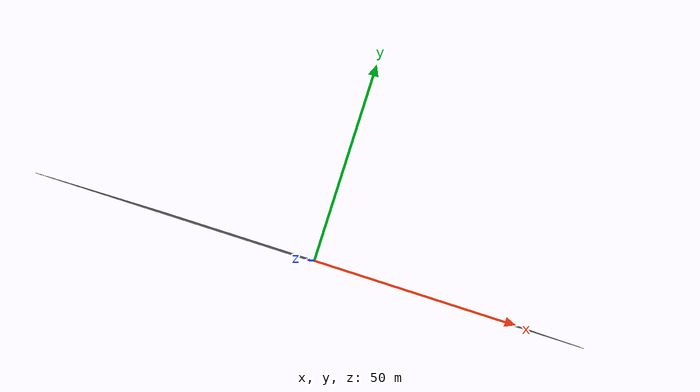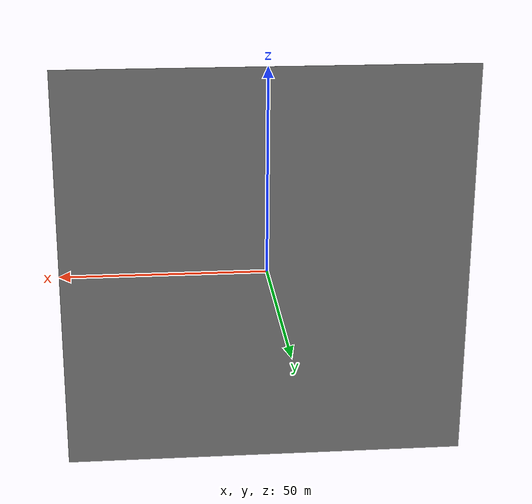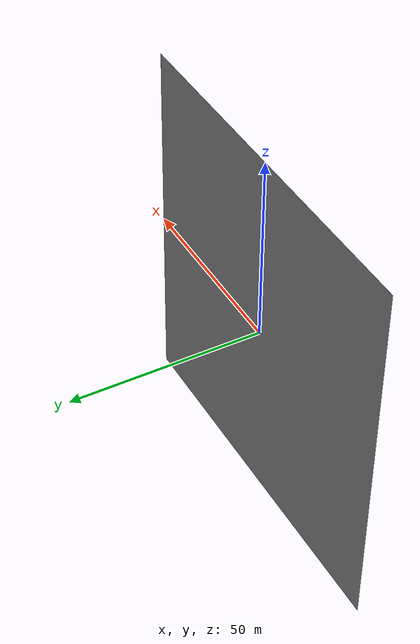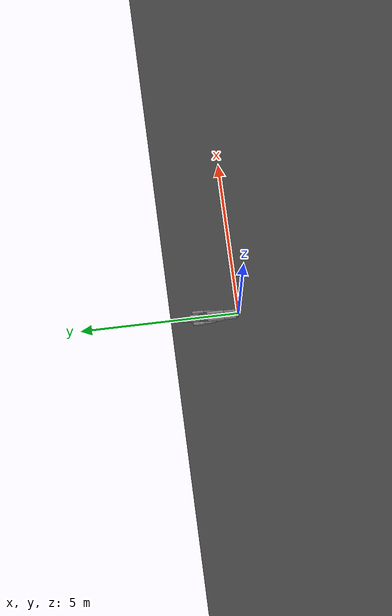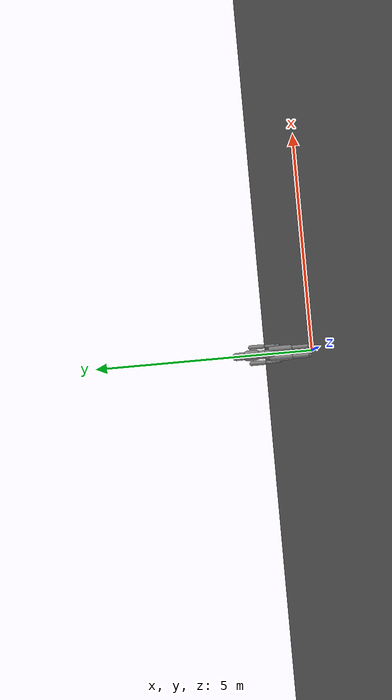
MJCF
<mujoco model="anima_human"><compiler angle="degree" inertiafromgeom="true" /><option timestep="0.004166666666666667" gravity="0 -9.81 0" integrator="implicitfast" iterations="50" /><default><joint damping="1.0" armature="0.02" limited="true" /><geom contype="1" conaffinity="2" friction="0.8 .005 .0001" condim="3" /></default><worldbody><geom name="floor" type="plane" size="50 50 .1" quat=".70710678 -.70710678 0 0" contype="2" conaffinity="1" /><body name="pelvis" pos="0 0.93 0"><freejoint name="root_free" /><geom name="pelvis_geom" size="0.1" mass="9.183673469387756" type="capsule" fromto="0 0 0 0.0 0.16 0.0" /><body name="spine" pos="0.0 0.16 0.0"><joint name="spine_x" type="hinge" axis="1 0 0" range="-45 45" /><joint name="spine_y" type="hinge" axis="0 1 0" range="-30 30" /><joint name="spine_z" type="hinge" axis="0 0 1" range="-30 30" /><geom name="spine_geom" size="0.1" mass="7.653061224489796" type="capsule" fromto="0 0 0 0.0 0.21 0.0" /><body name="chest" pos="0.0 0.21 0.0"><joint name="chest_x" type="hinge" axis="1 0 0" range="-45 45" /><joint name="chest_y" type="hinge" axis="0 1 0" range="-30 30" /><joint name="chest_z" type="hinge" axis="0 0 1" range="-30 30" /><geom name="chest_geom" size="0.125" mass="15.306122448979592" type="capsule" fromto="0 0 0 0.0 0.17 0.0" /><body name="neck" pos="0.0 0.17 0.0"><joint name="neck_x" type="hinge" axis="1 0 0" range="-45 45" /><joint name="neck_y" type="hinge" axis="0 1 0" range="-30 30" /><joint name="neck_z" type="hinge" axis="0 0 1" range="-30 30" /><geom name="neck_geom" size="0.045" mass="1.530612244897959" type="capsule" fromto="0 0 0 0.0 0.12 0.0" /><body name="head" pos="0.0 0.12 0.0"><joint name="head_x" type="hinge" axis="1 0 0" range="-45 45" /><joint name="head_y" type="hinge" axis="0 1 0" range="-30 30" /><joint name="head_z" type="hinge" axis="0 0 1" range="-30 30" /><geom name="head_geom" size="0.09" mass="6.122448979591836" type="capsule" fromto="0 0 0 0.0 0.16 0.0" /><body name="head_tip" pos="0.0 0.16 0.0"><geom name="head_tip_geom" size="0.045" mass="0.0001" type="sphere" /></body></body></body><body name="left_shoulder" pos="-0.18500000000000003 0.105 0.0"><joint name="left_shoulder_x" type="hinge" axis="1 0 0" range="-160 160" /><joint name="left_shoulder_y" type="hinge" axis="0 1 0" range="-100 100" /><joint name="left_shoulder_z" type="hinge" axis="0 0 1" range="-170 170" /><geom name="left_shoulder_geom" size="0.052" mass="0.7653061224489796" type="capsule" fromto="0 0 0 0.0 -0.285 0.0" /><body name="left_elbow" pos="0.0 -0.285 0.0"><joint name="left_elbow_x" type="hinge" axis="1 0 0" range="-155 0" /><geom name="left_elbow_geom" size="0.034" mass="2.295918367346939" type="capsule" fromto="0 0 0 0.0 -0.255 0.0" /><body name="left_wrist" pos="0.0 -0.255 0.0"><joint name="left_wrist_x" type="hinge" axis="1 0 0" range="-75 75" /><joint name="left_wrist_y" type="hinge" axis="0 1 0" range="-65 65" /><joint name="left_wrist_z" type="hinge" axis="0 0 1" range="-35 35" /><geom name="left_wrist_geom" size="0.025" mass="1.530612244897959" type="capsule" fromto="0 0 0 0.0 -0.115 0.0" /><body name="left_hand" pos="0.0 -0.115 0.0"><joint name="left_hand_x" type="hinge" axis="1 0 0" range="-40 40" /><joint name="left_hand_y" type="hinge" axis="0 1 0" range="-25 25" /><joint name="left_hand_z" type="hinge" axis="0 0 1" range="-25 25" /><geom name="left_hand_geom" size="0.025" mass="0.7653061224489796" type="sphere" /></body></body></body></body><body name="right_shoulder" pos="0.18500000000000003 0.105 0.0"><joint name="right_shoulder_x" type="hinge" axis="1 0 0" range="-160 160" /><joint name="right_shoulder_y" type="hinge" axis="0 1 0" range="-100 100" /><joint name="right_shoulder_z" type="hinge" axis="0 0 1" range="-170 170" /><geom name="right_shoulder_geom" size="0.052" mass="0.7653061224489796" type="capsule" fromto="0 0 0 0.0 -0.285 0.0" /><body name="right_elbow" pos="0.0 -0.285 0.0"><joint name="right_elbow_x" type="hinge" axis="1 0 0" range="-155 0" /><geom name="right_elbow_geom" size="0.034" mass="2.295918367346939" type="capsule" fromto="0 0 0 0.0 -0.255 0.0" /><body name="right_wrist" pos="0.0 -0.255 0.0"><joint name="right_wrist_x" type="hinge" axis="1 0 0" range="-75 75" /><joint name="right_wrist_y" type="hinge" axis="0 1 0" range="-65 65" /><joint name="right_wrist_z" type="hinge" axis="0 0 1" range="-35 35" /><geom name="right_wrist_geom" size="0.025" mass="1.530612244897959" type="capsule" fromto="0 0 0 0.0 -0.115 0.0" /><body name="right_hand" pos="0.0 -0.115 0.0"><joint name="right_hand_x" type="hinge" axis="1 0 0" range="-40 40" /><joint name="right_hand_y" type="hinge" axis="0 1 0" range="-25 25" /><joint name="right_hand_z" type="hinge" axis="0 0 1" range="-25 25" /><geom name="right_hand_geom" size="0.025" mass="0.7653061224489796" type="sphere" /></body></body></body></body></body></body><body name="left_hip" pos="-0.1 0.0 0.0"><joint name="left_hip_x" type="hinge" axis="1 0 0" range="-120 55" /><joint name="left_hip_y" type="hinge" axis="0 1 0" range="-45 45" /><joint name="left_hip_z" type="hinge" axis="0 0 1" range="-50 50" /><geom name="left_hip_geom" size="0.072" mass="0.7653061224489796" type="capsule" fromto="0 0 0 0.0 -0.43 0.0" /><body name="left_knee" pos="0.0 -0.43 0.0"><joint name="left_knee_x" type="hinge" axis="1 0 0" range="0 155" /><geom name="left_knee_geom" size="0.052" mass="7.653061224489796" type="capsule" fromto="0 0 0 0.0 -0.43 0.0" /><body name="left_ankle" pos="0.0 -0.43 0.0"><joint name="left_ankle_x" type="hinge" axis="1 0 0" range="-75 55" /><joint name="left_ankle_y" type="hinge" axis="0 1 0" range="-25 25" /><joint name="left_ankle_z" type="hinge" axis="0 0 1" range="-25 25" /><geom name="left_ankle_geom" size="0.033" mass="3.061224489795918" type="capsule" fromto="0 0 0 0.0 -0.045 0.15" /><body name="left_toe" pos="0.0 -0.045 0.15"><joint name="left_toe_x" type="hinge" axis="1 0 0" range="-40 60" /><geom name="left_toe_geom" size="0.025" mass="0.7653061224489796" type="sphere" /></body></body></body></body><body name="right_hip" pos="0.1 0.0 0.0"><joint name="right_hip_x" type="hinge" axis="1 0 0" range="-120 55" /><joint name="right_hip_y" type="hinge" axis="0 1 0" range="-45 45" /><joint name="right_hip_z" type="hinge" axis="0 0 1" range="-50 50" /><geom name="right_hip_geom" size="0.072" mass="0.7653061224489796" type="capsule" fromto="0 0 0 0.0 -0.43 0.0" /><body name="right_knee" pos="0.0 -0.43 0.0"><joint name="right_knee_x" type="hinge" axis="1 0 0" range="0 155" /><geom name="right_knee_geom" size="0.052" mass="7.653061224489796" type="capsule" fromto="0 0 0 0.0 -0.43 0.0" /><body name="right_ankle" pos="0.0 -0.43 0.0"><joint name="right_ankle_x" type="hinge" axis="1 0 0" range="-75 55" /><joint name="right_ankle_y" type="hinge" axis="0 1 0" range="-25 25" /><joint name="right_ankle_z" type="hinge" axis="0 0 1" range="-25 25" /><geom name="right_ankle_geom" size="0.033" mass="3.061224489795918" type="capsule" fromto="0 0 0 0.0 -0.045 0.15" /><body name="right_toe" pos="0.0 -0.045 0.15"><joint name="right_toe_x" type="hinge" axis="1 0 0" range="-40 60" /><geom name="right_toe_geom" size="0.025" mass="0.7653061224489796" type="sphere" /></body></body></body></body></body></worldbody></mujoco>
